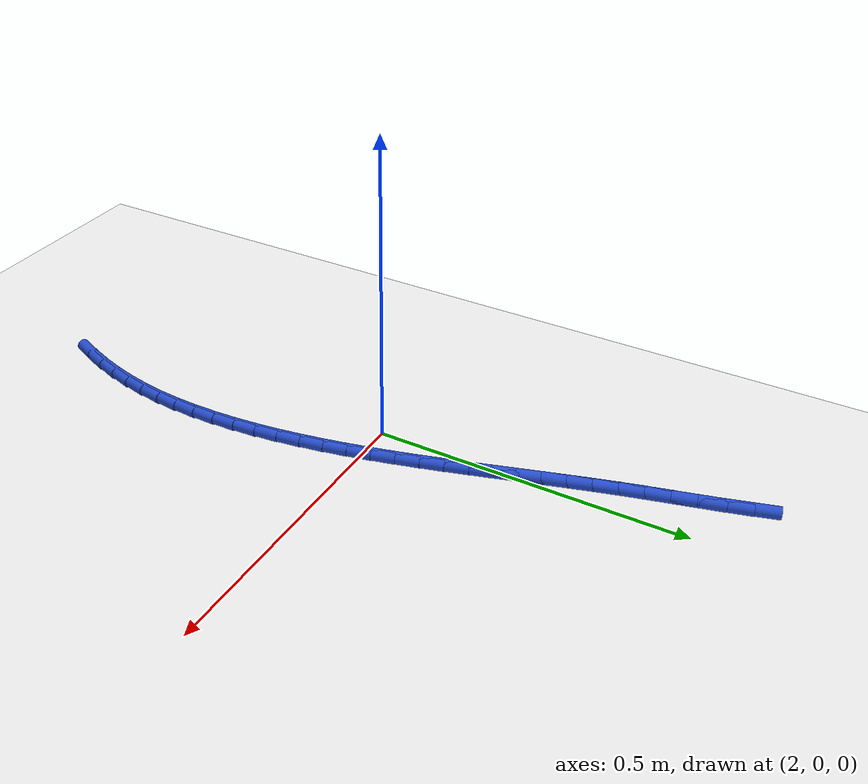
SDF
<sdf version="1.6">
 <world name="default">
  <model name="ground_plane">
   <static>1</static>
   <link name="link">
    <collision name="collision">
     <geometry><plane><normal>0 0 1</normal><size>100 100</size></plane></geometry>
     <surface><friction><ode><mu>100</mu><mu2>50</mu2></ode></friction></surface>
    </collision>
    <visual name="visual">
     <cast_shadows>0</cast_shadows>
     <geometry><plane><normal>0 0 1</normal><size>100 100</size></plane></geometry>
     <material>
      <script><uri>file://media/materials/scripts/gazebo.material</uri><name>Gazebo/WhiteGlow</name></script>
     </material>
    </visual>
   </link>
  </model>
  <model name="line">
   <link name="link_72">
    <pose>1.9057667309431274 0.5590516843612653 0.01 0 1.57 -1.2819942664992874</pose>
    <collision name="collision">
     <geometry><cylinder><radius>0.01</radius><length>0.08</length></cylinder></geometry>
    </collision>
    <visual name="visual">
     <material>
      <script><name>Gazebo/Blue</name><uri>file://media/materials/scripts/gazebo.material</uri></script>
     </material>
     <geometry><cylinder><radius>0.01</radius><length>0.08</length></cylinder></geometry>
    </visual>
   </link>
   <link name="link_73">
    <pose>1.9165432559989222 0.5227803554220494 0.01 0 1.57 -1.300720645690943</pose>
    <collision name="collision">
     <geometry><cylinder><radius>0.01</radius><length>0.08</length></cylinder></geometry>
    </collision>
    <visual name="visual">
     <material>
      <script><name>Gazebo/Blue</name><uri>file://media/materials/scripts/gazebo.material</uri></script>
     </material>
     <geometry><cylinder><radius>0.01</radius><length>0.08</length></cylinder></geometry>
    </visual>
   </link>
   <link name="link_74">
    <pose>1.9266678519674596 0.4862082920242447 0.01 0 1.57 -1.3096540206643588</pose>
    <collision name="collision">
     <geometry><cylinder><radius>0.01</radius><length>0.08</length></cylinder></geometry>
    </collision>
    <visual name="visual">
     <material>
      <script><name>Gazebo/Blue</name><uri>file://media/materials/scripts/gazebo.material</uri></script>
     </material>
     <geometry><cylinder><radius>0.01</radius><length>0.08</length></cylinder></geometry>
    </visual>
   </link>
   <link name="link_75">
    <pose>1.9364738635992376 0.4495153342782166 0.01 0 1.57 -1.3088767795349114</pose>
    <collision name="collision">
     <geometry><cylinder><radius>0.01</radius><length>0.08</length></cylinder></geometry>
    </collision>
    <visual name="visual">
     <material>
      <script><name>Gazebo/Blue</name><uri>file://media/materials/scripts/gazebo.material</uri></script>
     </material>
     <geometry><cylinder><radius>0.01</radius><length>0.08</length></cylinder></geometry>
    </visual>
   </link>
   <link name="link_76">
    <pose>1.946294635644752 0.4128813222943292 0.01 0 1.57 -1.2986343620087377</pose>
    <collision name="collision">
     <geometry><cylinder><radius>0.01</radius><length>0.08</length></cylinder></geometry>
    </collision>
    <visual name="visual">
     <material>
      <script><name>Gazebo/Blue</name><uri>file://media/materials/scripts/gazebo.material</uri></script>
     </material>
     <geometry><cylinder><radius>0.01</radius><length>0.08</length></cylinder></geometry>
    </visual>
   </link>
   <link name="link_77">
    <pose>1.9564536013588638 0.3764806217755732 0.01 0 1.57 -1.2851885295211927</pose>
    <collision name="collision">
     <geometry><cylinder><radius>0.01</radius><length>0.08</length></cylinder></geometry>
    </collision>
    <visual name="visual">
     <material>
      <script><name>Gazebo/Blue</name><uri>file://media/materials/scripts/gazebo.material</uri></script>
     </material>
     <geometry><cylinder><radius>0.01</radius><length>0.08</length></cylinder></geometry>
    </visual>
   </link>
   <link name="link_78">
    <pose>1.9670575703234248 0.3403679508685795 0.01 0 1.57 -1.274758991868318</pose>
    <collision name="collision">
     <geometry><cylinder><radius>0.01</radius><length>0.08</length></cylinder></geometry>
    </collision>
    <visual name="visual">
     <material>
      <script><name>Gazebo/Blue</name><uri>file://media/materials/scripts/gazebo.material</uri></script>
     </material>
     <geometry><cylinder><radius>0.01</radius><length>0.08</length></cylinder></geometry>
    </visual>
   </link>
   <link name="link_79">
    <pose>1.9780028475901978 0.30448175994426324 0.01 0 1.57 -1.267661321259194</pose>
    <collision name="collision">
     <geometry><cylinder><radius>0.01</radius><length>0.08</length></cylinder></geometry>
    </collision>
    <visual name="visual">
     <material>
      <script><name>Gazebo/Blue</name><uri>file://media/materials/scripts/gazebo.material</uri></script>
     </material>
     <geometry><cylinder><radius>0.01</radius><length>0.08</length></cylinder></geometry>
    </visual>
   </link>
   <link name="link_80">
    <pose>1.9891770508589068 0.26875570109628616 0.01 0 1.57 -1.2639365402089904</pose>
    <collision name="collision">
     <geometry><cylinder><radius>0.01</radius><length>0.08</length></cylinder></geometry>
    </collision>
    <visual name="visual">
     <material>
      <script><name>Gazebo/Blue</name><uri>file://media/materials/scripts/gazebo.material</uri></script>
     </material>
     <geometry><cylinder><radius>0.01</radius><length>0.08</length></cylinder></geometry>
    </visual>
   </link>
   <link name="link_81">
    <pose>2.0004677978292746 0.23312342641831077 0.01 0 1.57 -1.2636084689948857</pose>
    <collision name="collision">
     <geometry><cylinder><radius>0.01</radius><length>0.08</length></cylinder></geometry>
    </collision>
    <visual name="visual">
     <material>
      <script><name>Gazebo/Blue</name><uri>file://media/materials/scripts/gazebo.material</uri></script>
     </material>
     <geometry><cylinder><radius>0.01</radius><length>0.08</length></cylinder></geometry>
    </visual>
   </link>
   <link name="link_82">
    <pose>2.011762706201027 0.19751858800399907 0.01 0 1.57 -1.2666846812335684</pose>
    <collision name="collision">
     <geometry><cylinder><radius>0.01</radius><length>0.08</length></cylinder></geometry>
    </collision>
    <visual name="visual">
     <material>
      <script><name>Gazebo/Blue</name><uri>file://media/materials/scripts/gazebo.material</uri></script>
     </material>
     <geometry><cylinder><radius>0.01</radius><length>0.08</length></cylinder></geometry>
    </visual>
   </link>
   <link name="link_83">
    <pose>2.022949393673886 0.16187483794701255 0.01 0 1.57 -1.2731565015841209</pose>
    <collision name="collision">
     <geometry><cylinder><radius>0.01</radius><length>0.08</length></cylinder></geometry>
    </collision>
    <visual name="visual">
     <material>
      <script><name>Gazebo/Blue</name><uri>file://media/materials/scripts/gazebo.material</uri></script>
     </material>
     <geometry><cylinder><radius>0.01</radius><length>0.08</length></cylinder></geometry>
    </visual>
   </link>
   <link name="link_84">
    <pose>2.0339154779475765 0.12612582834101402 0.01 0 1.57 -1.2829980264540715</pose>
    <collision name="collision">
     <geometry><cylinder><radius>0.01</radius><length>0.08</length></cylinder></geometry>
    </collision>
    <visual name="visual">
     <material>
      <script><name>Gazebo/Blue</name><uri>file://media/materials/scripts/gazebo.material</uri></script>
     </material>
     <geometry><cylinder><radius>0.01</radius><length>0.08</length></cylinder></geometry>
    </visual>
   </link>
   <link name="link_85">
    <pose>2.044548576721822 0.0902052112796648 0.01 0 1.57 -1.2961642247212843</pose>
    <collision name="collision">
     <geometry><cylinder><radius>0.01</radius><length>0.08</length></cylinder></geometry>
    </collision>
    <visual name="visual">
     <material>
      <script><name>Gazebo/Blue</name><uri>file://media/materials/scripts/gazebo.material</uri></script>
     </material>
     <geometry><cylinder><radius>0.01</radius><length>0.08</length></cylinder></geometry>
    </visual>
   </link>
   <link name="link_86">
    <pose>2.0547363076963463 0.05404663885662771 0.01 0 1.57 -1.312588256852158</pose>
    <collision name="collision">
     <geometry><cylinder><radius>0.01</radius><length>0.08</length></cylinder></geometry>
    </collision>
    <visual name="visual">
     <material>
      <script><name>Gazebo/Blue</name><uri>file://media/materials/scripts/gazebo.material</uri></script>
     </material>
     <geometry><cylinder><radius>0.01</radius><length>0.08</length></cylinder></geometry>
    </visual>
   </link>
   <link name="link_87">
    <pose>2.0643662885708736 0.01758376316556441 0.01 0 1.57 -1.33215955179837</pose>
    <collision name="collision">
     <geometry><cylinder><radius>0.01</radius><length>0.08</length></cylinder></geometry>
    </collision>
    <visual name="visual">
     <material>
      <script><name>Gazebo/Blue</name><uri>file://media/materials/scripts/gazebo.material</uri></script>
     </material>
     <geometry><cylinder><radius>0.01</radius><length>0.08</length></cylinder></geometry>
    </visual>
   </link>
   <link name="link_88">
    <pose>2.0733254059054342 -0.019243761341352795 0.01 0 1.57 -1.354567103750134</pose>
    <collision name="collision">
     <geometry><cylinder><radius>0.01</radius><length>0.08</length></cylinder></geometry>
    </collision>
    <visual name="visual">
     <material>
      <script><name>Gazebo/Blue</name><uri>file://media/materials/scripts/gazebo.material</uri></script>
     </material>
     <geometry><cylinder><radius>0.01</radius><length>0.08</length></cylinder></geometry>
    </visual>
   </link>
   <link name="link_89">
    <pose>2.081490743951849 -0.05641580726177312 0.01 0 1.57 -1.3797305028080618</pose>
    <collision name="collision">
     <geometry><cylinder><radius>0.01</radius><length>0.08</length></cylinder></geometry>
    </collision>
    <visual name="visual">
     <material>
      <script><name>Gazebo/Blue</name><uri>file://media/materials/scripts/gazebo.material</uri></script>
     </material>
     <geometry><cylinder><radius>0.01</radius><length>0.08</length></cylinder></geometry>
    </visual>
   </link>
   <link name="link_90">
    <pose>2.088732383710736 -0.0938547533589275 0.01 0 1.57 -1.4078022317626662</pose>
    <collision name="collision">
     <geometry><cylinder><radius>0.01</radius><length>0.08</length></cylinder></geometry>
    </collision>
    <visual name="visual">
     <material>
      <script><name>Gazebo/Blue</name><uri>file://media/materials/scripts/gazebo.material</uri></script>
     </material>
     <geometry><cylinder><radius>0.01</radius><length>0.08</length></cylinder></geometry>
    </visual>
   </link>
   <link name="link_91">
    <pose>2.094920254770701 -0.1314817353652164 0.01 0 1.57 -1.438959711115228</pose>
    <collision name="collision">
     <geometry><cylinder><radius>0.01</radius><length>0.08</length></cylinder></geometry>
    </collision>
    <visual name="visual">
     <material>
      <script><name>Gazebo/Blue</name><uri>file://media/materials/scripts/gazebo.material</uri></script>
     </material>
     <geometry><cylinder><radius>0.01</radius><length>0.08</length></cylinder></geometry>
    </visual>
   </link>
   <link name="link_92">
    <pose>2.09992428672035 -0.1692178890130411 0.01 0 1.57 -1.4733965205606594</pose>
    <collision name="collision">
     <geometry><cylinder><radius>0.01</radius><length>0.08</length></cylinder></geometry>
    </collision>
    <visual name="visual">
     <material>
      <script><name>Gazebo/Blue</name><uri>file://media/materials/scripts/gazebo.material</uri></script>
     </material>
     <geometry><cylinder><radius>0.01</radius><length>0.08</length></cylinder></geometry>
    </visual>
   </link>
   <link name="link_93">
    <pose>2.1036144091482885 -0.20698435003480062 0.01 0 1.57 -1.5113154783108662</pose>
    <collision name="collision">
     <geometry><cylinder><radius>0.01</radius><length>0.08</length></cylinder></geometry>
    </collision>
    <visual name="visual">
     <material>
      <script><name>Gazebo/Blue</name><uri>file://media/materials/scripts/gazebo.material</uri></script>
     </material>
     <geometry><cylinder><radius>0.01</radius><length>0.08</length></cylinder></geometry>
    </visual>
   </link>
   <link name="link_94">
    <pose>2.1058605516431212 -0.24470225416289607 0.01 0 1.57 -1.5529189148773919</pose>
    <collision name="collision">
     <geometry><cylinder><radius>0.01</radius><length>0.08</length></cylinder></geometry>
    </collision>
    <visual name="visual">
     <material>
      <script><name>Gazebo/Blue</name><uri>file://media/materials/scripts/gazebo.material</uri></script>
     </material>
     <geometry><cylinder><radius>0.01</radius><length>0.08</length></cylinder></geometry>
    </visual>
   </link>
   <link name="link_95">
    <pose>2.106532643793456 -0.282292737129728 0.01 0 1.57 1.5431973243703143</pose>
    <collision name="collision">
     <geometry><cylinder><radius>0.01</radius><length>0.08</length></cylinder></geometry>
    </collision>
    <visual name="visual">
     <material>
      <script><name>Gazebo/Blue</name><uri>file://media/materials/scripts/gazebo.material</uri></script>
     </material>
     <geometry><cylinder><radius>0.01</radius><length>0.08</length></cylinder></geometry>
    </visual>
   </link>
   <link name="link_96">
    <pose>2.1055006151878968 -0.319676934667697 0.01 0 1.57 1.4936909141024521</pose>
    <collision name="collision">
     <geometry><cylinder><radius>0.01</radius><length>0.08</length></cylinder></geometry>
    </collision>
    <visual name="visual">
     <material>
      <script><name>Gazebo/Blue</name><uri>file://media/materials/scripts/gazebo.material</uri></script>
     </material>
     <geometry><cylinder><radius>0.01</radius><length>0.08</length></cylinder></geometry>
    </visual>
   </link>
   <link name="link_97">
    <pose>2.10263439541505 -0.3567759825092034 0.01 0 1.57 1.4400512343409213</pose>
    <collision name="collision">
     <geometry><cylinder><radius>0.01</radius><length>0.08</length></cylinder></geometry>
    </collision>
    <visual name="visual">
     <material>
      <script><name>Gazebo/Blue</name><uri>file://media/materials/scripts/gazebo.material</uri></script>
     </material>
     <geometry><cylinder><radius>0.01</radius><length>0.08</length></cylinder></geometry>
    </visual>
   </link>
   <link name="link_98">
    <pose>2.0978039140635207 -0.3935110163866484 0.01 0 1.57 1.383180165062353</pose>
    <collision name="collision">
     <geometry><cylinder><radius>0.01</radius><length>0.08</length></cylinder></geometry>
    </collision>
    <visual name="visual">
     <material>
      <script><name>Gazebo/Blue</name><uri>file://media/materials/scripts/gazebo.material</uri></script>
     </material>
     <geometry><cylinder><radius>0.01</radius><length>0.08</length></cylinder></geometry>
    </visual>
   </link>
   <link name="link_99">
    <pose>2.0909117686894647 -0.42981432559907795 0.01 0 1.57 1.3270202155589006</pose>
    <collision name="collision">
     <geometry><cylinder><radius>0.01</radius><length>0.08</length></cylinder></geometry>
    </collision>
    <visual name="visual">
     <material>
      <script><name>Gazebo/Blue</name><uri>file://media/materials/scripts/gazebo.material</uri></script>
     </material>
     <geometry><cylinder><radius>0.01</radius><length>0.08</length></cylinder></geometry>
    </visual>
   </link>
   <link name="link_100">
    <pose>2.081995107550256 -0.4656641380308298 0.01 0 1.57 1.2727807545882257</pose>
    <collision name="collision">
     <geometry><cylinder><radius>0.01</radius><length>0.08</length></cylinder></geometry>
    </collision>
    <visual name="visual">
     <material>
      <script><name>Gazebo/Blue</name><uri>file://media/materials/scripts/gazebo.material</uri></script>
     </material>
     <geometry><cylinder><radius>0.01</radius><length>0.08</length></cylinder></geometry>
    </visual>
   </link>
   <link name="link_101">
    <pose>2.0711257148982423 -0.501050507060977 0.01 0 1.57 1.2206419641503632</pose>
    <collision name="collision">
     <geometry><cylinder><radius>0.01</radius><length>0.08</length></cylinder></geometry>
    </collision>
    <visual name="visual">
     <material>
      <script><name>Gazebo/Blue</name><uri>file://media/materials/scripts/gazebo.material</uri></script>
     </material>
     <geometry><cylinder><radius>0.01</radius><length>0.08</length></cylinder></geometry>
    </visual>
   </link>
   <link name="link_102">
    <pose>2.058375375016952 -0.535963486079239 0.01 0 1.57 1.170725278945541</pose>
    <collision name="collision">
     <geometry><cylinder><radius>0.01</radius><length>0.08</length></cylinder></geometry>
    </collision>
    <visual name="visual">
     <material>
      <script><name>Gazebo/Blue</name><uri>file://media/materials/scripts/gazebo.material</uri></script>
     </material>
     <geometry><cylinder><radius>0.01</radius><length>0.08</length></cylinder></geometry>
    </visual>
   </link>
  </model>
 </world>
</sdf>
